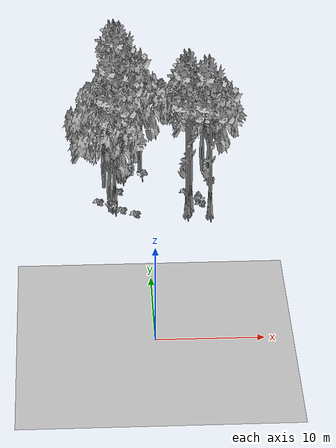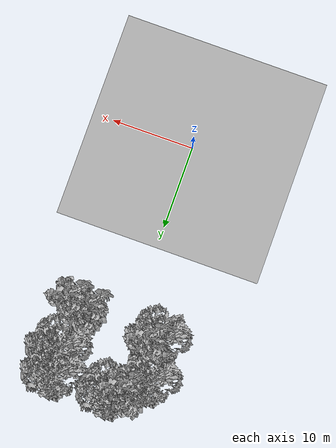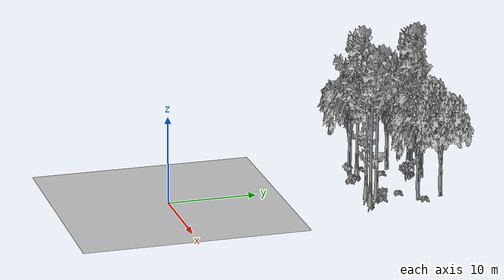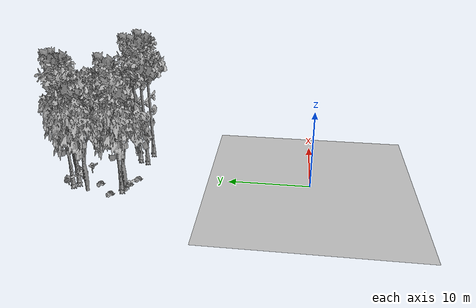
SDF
<sdf version="1.7">
 <world name="default">
  <model name="ground_plane">
   <static>1</static>
   <link name="link">
    <collision name="collision">
     <pose>-50 0 0 0 -0 0</pose>
     <geometry><plane><normal>0 0 1</normal><size>80 80</size></plane></geometry>
     <surface><contact><ode><min_depth>0.01</min_depth><max_vel>0</max_vel></ode></contact></surface>
    </collision>
    <visual name="grass">
     <cast_shadows>0</cast_shadows>
     <geometry>
      <mesh>
       <scale>0.46714285714285714 0.46714285714285714 0.1</scale>
       <uri>file://grass_plane/meshes/grass_plane.dae</uri>
      </mesh>
     </geometry>
    </visual>
   </link>
  </model>
  <model name="Tree 5">
   <static>1</static>
   <pose>6.3755457740318775 21.31702471698801 0 1.57079 -0 0</pose>
   <link name="link">
    <collision name="collision">
     <geometry><mesh><scale>3.5 5 3.5</scale><uri>model://tree_9/meshes/tree_9.obj</uri></mesh></geometry>
    </collision>
    <visual name="visual">
     <geometry><mesh><scale>3.5 5 3.5</scale><uri>model://tree_9/meshes/tree_9.obj</uri></mesh></geometry>
    </visual>
   </link>
  </model>
  <model name="Tree 19">
   <static>1</static>
   <pose>-0.4181565198743158 29.577803610029378 0 1.57079 -0 0</pose>
   <link name="link">
    <collision name="collision">
     <geometry><mesh><scale>3.5 5 3.5</scale><uri>model://tree_2/meshes/tree_2.obj</uri></mesh></geometry>
    </collision>
    <visual name="visual">
     <geometry><mesh><scale>3.5 5 3.5</scale><uri>model://tree_2/meshes/tree_2.obj</uri></mesh></geometry>
    </visual>
   </link>
  </model>
  <model name="Tree 113">
   <static>1</static>
   <pose>-2.14471892023154 28.60866677993144 0 1.57079 -0 0</pose>
   <link name="link">
    <collision name="collision">
     <geometry><mesh><scale>3.5 5 3.5</scale><uri>model://tree_9/meshes/tree_9.obj</uri></mesh></geometry>
    </collision>
    <visual name="visual">
     <geometry><mesh><scale>3.5 5 3.5</scale><uri>model://tree_9/meshes/tree_9.obj</uri></mesh></geometry>
    </visual>
   </link>
  </model>
  <model name="Tree 159">
   <static>1</static>
   <pose>6.507983322794608 26.78001388226734 0 1.57079 -0 0</pose>
   <link name="link">
    <collision name="collision">
     <geometry><mesh><scale>3.5 5 3.5</scale><uri>model://tree_2/meshes/tree_2.obj</uri></mesh></geometry>
    </collision>
    <visual name="visual">
     <geometry><mesh><scale>3.5 5 3.5</scale><uri>model://tree_2/meshes/tree_2.obj</uri></mesh></geometry>
    </visual>
   </link>
  </model>
  <model name="Tree 165">
   <static>1</static>
   <pose>4.11566203994024 21.547945157844275 0 1.57079 -0 0</pose>
   <link name="link">
    <collision name="collision">
     <geometry><mesh><scale>3.5 5 3.5</scale><uri>model://tree_9/meshes/tree_9.obj</uri></mesh></geometry>
    </collision>
    <visual name="visual">
     <geometry><mesh><scale>3.5 5 3.5</scale><uri>model://tree_9/meshes/tree_9.obj</uri></mesh></geometry>
    </visual>
   </link>
  </model>
  <model name="Tree 177">
   <static>1</static>
   <pose>-4.146102480162966 26.727455756973256 0 1.57079 -0 0</pose>
   <link name="link">
    <collision name="collision">
     <geometry><mesh><scale>3.5 5 3.5</scale><uri>model://tree_2/meshes/tree_2.obj</uri></mesh></geometry>
    </collision>
    <visual name="visual">
     <geometry><mesh><scale>3.5 5 3.5</scale><uri>model://tree_2/meshes/tree_2.obj</uri></mesh></geometry>
    </visual>
   </link>
  </model>
  <model name="Tree 320">
   <static>1</static>
   <pose>-2.697463424799359 29.1555370142775 0 1.57079 -0 0</pose>
   <link name="link">
    <collision name="collision">
     <geometry><mesh><scale>3.5 5 3.5</scale><uri>model://tree_9/meshes/tree_9.obj</uri></mesh></geometry>
    </collision>
    <visual name="visual">
     <geometry><mesh><scale>3.5 5 3.5</scale><uri>model://tree_9/meshes/tree_9.obj</uri></mesh></geometry>
    </visual>
   </link>
  </model>
  <model name="Tree 364">
   <static>1</static>
   <pose>6.008409856488939 29.581472713434835 0 1.57079 -0 0</pose>
   <link name="link">
    <collision name="collision">
     <geometry><mesh><scale>3.5 5 3.5</scale><uri>model://tree_2/meshes/tree_2.obj</uri></mesh></geometry>
    </collision>
    <visual name="visual">
     <geometry><mesh><scale>3.5 5 3.5</scale><uri>model://tree_2/meshes/tree_2.obj</uri></mesh></geometry>
    </visual>
   </link>
  </model>
  <model name="Tree 380">
   <static>1</static>
   <pose>4.502727567091064 22.602676637499513 0 1.57079 -0 0</pose>
   <link name="link">
    <collision name="collision">
     <geometry><mesh><scale>3.5 5 3.5</scale><uri>model://tree_9/meshes/tree_9.obj</uri></mesh></geometry>
    </collision>
    <visual name="visual">
     <geometry><mesh><scale>3.5 5 3.5</scale><uri>model://tree_9/meshes/tree_9.obj</uri></mesh></geometry>
    </visual>
   </link>
  </model>
  <model name="Tree 478">
   <static>1</static>
   <pose>-3.6522069620724693 22.139534324422 0 1.57079 -0 0</pose>
   <link name="link">
    <collision name="collision">
     <geometry><mesh><scale>3.5 5 3.5</scale><uri>model://tree_2/meshes/tree_2.obj</uri></mesh></geometry>
    </collision>
    <visual name="visual">
     <geometry><mesh><scale>3.5 5 3.5</scale><uri>model://tree_2/meshes/tree_2.obj</uri></mesh></geometry>
    </visual>
   </link>
  </model>
  <model name="Tree 496">
   <static>1</static>
   <pose>-3.0812787924728227 22.82948341077524 0 1.57079 -0 0</pose>
   <link name="link">
    <collision name="collision">
     <geometry><mesh><scale>3.5 5 3.5</scale><uri>model://tree_9/meshes/tree_9.obj</uri></mesh></geometry>
    </collision>
    <visual name="visual">
     <geometry><mesh><scale>3.5 5 3.5</scale><uri>model://tree_9/meshes/tree_9.obj</uri></mesh></geometry>
    </visual>
   </link>
  </model>
  <model name="Bush 6">
   <static>1</static>
   <pose>-3.1837311739048317 29.466480103000563 0 1.57079 -0 0</pose>
   <link name="link">
    <collision name="collision">
     <geometry><mesh><scale>2 2 2</scale><uri>model://bush_0/meshes/bush_0.obj</uri></mesh></geometry>
     <surface><contact><collide_without_contact>false</collide_without_contact></contact></surface>
    </collision>
    <visual name="visual">
     <geometry><mesh><scale>2 2 2</scale><uri>model://bush_0/meshes/bush_0.obj</uri></mesh></geometry>
    </visual>
   </link>
  </model>
  <model name="Bush 81">
   <static>1</static>
   <pose>-3.270916444854997 21.85300784234282 0 1.57079 -0 0</pose>
   <link name="link">
    <collision name="collision">
     <geometry><mesh><scale>2 2 2</scale><uri>model://bush_0/meshes/bush_0.obj</uri></mesh></geometry>
     <surface><contact><collide_without_contact>false</collide_without_contact></contact></surface>
    </collision>
    <visual name="visual">
     <geometry><mesh><scale>2 2 2</scale><uri>model://bush_0/meshes/bush_0.obj</uri></mesh></geometry>
    </visual>
   </link>
  </model>
  <model name="Bush 112">
   <static>1</static>
   <pose>-2.4043760351240024 22.05048234573178 0 1.57079 -0 0</pose>
   <link name="link">
    <collision name="collision">
     <geometry><mesh><scale>2 2 2</scale><uri>model://bush_2/meshes/bush_2.obj</uri></mesh></geometry>
     <surface><contact><collide_without_contact>false</collide_without_contact></contact></surface>
    </collision>
    <visual name="visual">
     <geometry><mesh><scale>2 2 2</scale><uri>model://bush_2/meshes/bush_2.obj</uri></mesh></geometry>
    </visual>
   </link>
  </model>
  <model name="Bush 135">
   <static>1</static>
   <pose>5.222299832957589 23.038059391873638 0 1.57079 -0 0</pose>
   <link name="link">
    <collision name="collision">
     <geometry><mesh><scale>2 2 2</scale><uri>model://bush_4/meshes/bush_4.obj</uri></mesh></geometry>
     <surface><contact><collide_without_contact>false</collide_without_contact></contact></surface>
    </collision>
    <visual name="visual">
     <geometry><mesh><scale>2 2 2</scale><uri>model://bush_4/meshes/bush_4.obj</uri></mesh></geometry>
    </visual>
   </link>
  </model>
  <model name="Bush 172">
   <static>1</static>
   <pose>-1.6979087723166302 28.273393366481955 0 1.57079 -0 0</pose>
   <link name="link">
    <collision name="collision">
     <geometry><mesh><scale>2 2 2</scale><uri>model://bush_1/meshes/bush_1.obj</uri></mesh></geometry>
     <surface><contact><collide_without_contact>false</collide_without_contact></contact></surface>
    </collision>
    <visual name="visual">
     <geometry><mesh><scale>2 2 2</scale><uri>model://bush_1/meshes/bush_1.obj</uri></mesh></geometry>
    </visual>
   </link>
  </model>
  <model name="Bush 213">
   <static>1</static>
   <pose>4.1154272003227135 25.31208131889771 0 1.57079 -0 0</pose>
   <link name="link">
    <collision name="collision">
     <geometry><mesh><scale>2 2 2</scale><uri>model://bush_2/meshes/bush_2.obj</uri></mesh></geometry>
     <surface><contact><collide_without_contact>false</collide_without_contact></contact></surface>
    </collision>
    <visual name="visual">
     <geometry><mesh><scale>2 2 2</scale><uri>model://bush_2/meshes/bush_2.obj</uri></mesh></geometry>
    </visual>
   </link>
  </model>
  <model name="Bush 325">
   <static>1</static>
   <pose>-1.0644231800361155 21.310753657496015 0 1.57079 -0 0</pose>
   <link name="link">
    <collision name="collision">
     <geometry><mesh><scale>2 2 2</scale><uri>model://bush_2/meshes/bush_2.obj</uri></mesh></geometry>
     <surface><contact><collide_without_contact>false</collide_without_contact></contact></surface>
    </collision>
    <visual name="visual">
     <geometry><mesh><scale>2 2 2</scale><uri>model://bush_2/meshes/bush_2.obj</uri></mesh></geometry>
    </visual>
   </link>
  </model>
  <model name="Bush 444">
   <static>1</static>
   <pose>6.759113236992256 27.50085034076413 0 1.57079 -0 0</pose>
   <link name="link">
    <collision name="collision">
     <geometry><mesh><scale>2 2 2</scale><uri>model://bush_2/meshes/bush_2.obj</uri></mesh></geometry>
     <surface><contact><collide_without_contact>false</collide_without_contact></contact></surface>
    </collision>
    <visual name="visual">
     <geometry><mesh><scale>2 2 2</scale><uri>model://bush_2/meshes/bush_2.obj</uri></mesh></geometry>
    </visual>
   </link>
  </model>
  <model name="Bush 451">
   <static>1</static>
   <pose>-2.6612445580361452 25.627892450868202 0 1.57079 -0 0</pose>
   <link name="link">
    <collision name="collision">
     <geometry><mesh><scale>2 2 2</scale><uri>model://bush_2/meshes/bush_2.obj</uri></mesh></geometry>
     <surface><contact><collide_without_contact>false</collide_without_contact></contact></surface>
    </collision>
    <visual name="visual">
     <geometry><mesh><scale>2 2 2</scale><uri>model://bush_2/meshes/bush_2.obj</uri></mesh></geometry>
    </visual>
   </link>
  </model>
  <model name="Bush 534">
   <static>1</static>
   <pose>5.553376199640979 23.01875564375606 0 1.57079 -0 0</pose>
   <link name="link">
    <collision name="collision">
     <geometry><mesh><scale>2 2 2</scale><uri>model://bush_2/meshes/bush_2.obj</uri></mesh></geometry>
     <surface><contact><collide_without_contact>false</collide_without_contact></contact></surface>
    </collision>
    <visual name="visual">
     <geometry><mesh><scale>2 2 2</scale><uri>model://bush_2/meshes/bush_2.obj</uri></mesh></geometry>
    </visual>
   </link>
  </model>
  <model name="Bush 595">
   <static>1</static>
   <pose>-4.693298191731685 23.714955255777653 0 1.57079 -0 0</pose>
   <link name="link">
    <collision name="collision">
     <geometry><mesh><scale>2 2 2</scale><uri>model://bush_2/meshes/bush_2.obj</uri></mesh></geometry>
     <surface><contact><collide_without_contact>false</collide_without_contact></contact></surface>
    </collision>
    <visual name="visual">
     <geometry><mesh><scale>2 2 2</scale><uri>model://bush_2/meshes/bush_2.obj</uri></mesh></geometry>
    </visual>
   </link>
  </model>
  <model name="Bush 610">
   <static>1</static>
   <pose>-0.09691592794445825 27.63408961460037 0 1.57079 -0 0</pose>
   <link name="link">
    <collision name="collision">
     <geometry><mesh><scale>2 2 2</scale><uri>model://bush_5/meshes/bush_5.obj</uri></mesh></geometry>
     <surface><contact><collide_without_contact>false</collide_without_contact></contact></surface>
    </collision>
    <visual name="visual">
     <geometry><mesh><scale>2 2 2</scale><uri>model://bush_5/meshes/bush_5.obj</uri></mesh></geometry>
    </visual>
   </link>
  </model>
 </world>
</sdf>
